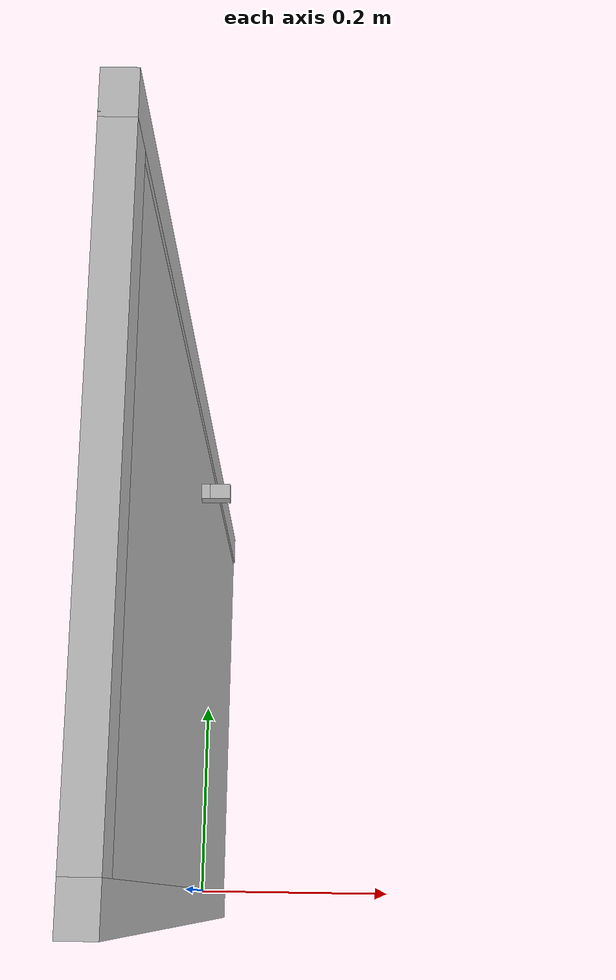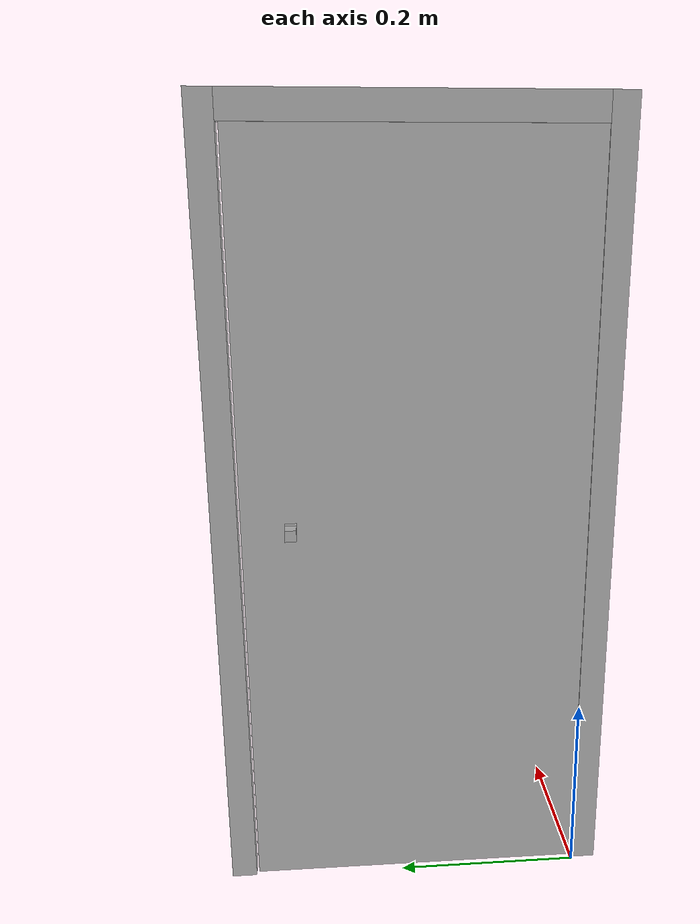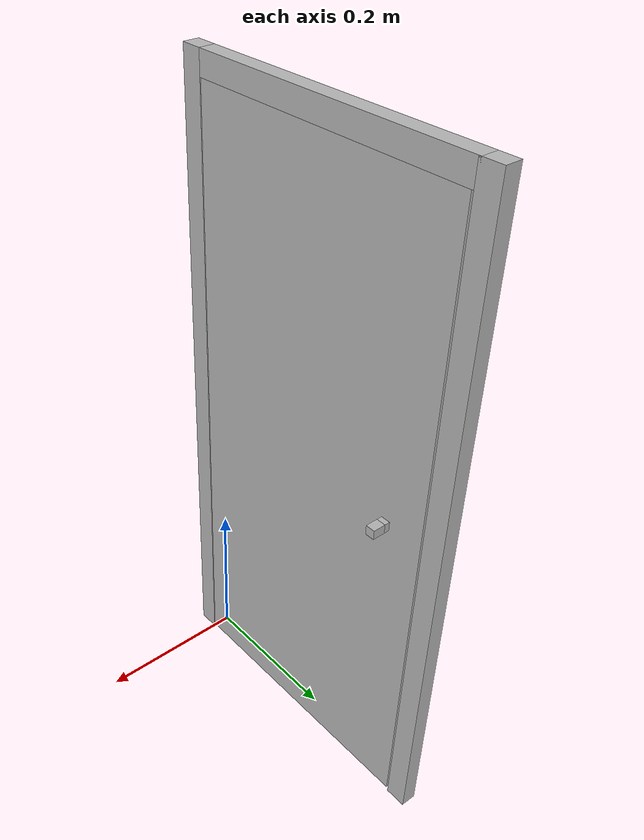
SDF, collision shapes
<?xml version="1.0" ?>
<sdf version="1.5">
  <model name="hinged_door">
    <static>false</static>
    <link name="frame">
      <pose>0.024 -0.0002 0 0 0 0</pose>
      <collision name="collision_1">
        <pose>-0.010058 -0.013716 0.42164 0 0 0</pose>
        <geometry>
          <box>
            <size>0.020116 0.027432 0.84328</size>
          </box>
        </geometry>
      </collision>
      <collision name="collision_2">
        <pose>-0.010058 0.382524 0.42164 0 0 0</pose>
        <geometry>
          <box>
            <size>0.020116 0.027432 0.84328</size>
          </box>
        </geometry>
      </collision>
      <collision name="collision_3">
        <pose>-0.010058 0.185928 0.828548 0 0 0</pose>
        <geometry>
          <box>
            <size>0.020116 0.371856 0.029464</size>
          </box>
        </geometry>
      </collision>
      <visual name="visual">
        <pose>0 -0.027432 0 0 0 0</pose>
        <geometry>
          <mesh>
            <uri>meshes/frame.dae</uri>
            <scale>0.4 0.4 0.4</scale>
          </mesh>
        </geometry>
      </visual>
    </link>
    <link name="door">
      <pose>0.0 0.000 0.816 3.14159 0 1.57</pose>
      <inertial>
        <mass>2.6448384</mass>
        <pose>0.18276 0.01396 0.4064 0 0 0</pose>
        <inertia>
          <ixx>0.145462</ixx>
          <ixy>4.096e-06</ixy>
          <ixz>0.0000</ixz>
          <iyy>0.176125</iyy>
          <iyz>0.0000</iyz>
          <izz>0.0310251</izz>
        </inertia>
      </inertial>
      <collision name="collision">
        <pose>0.18276 0.01396 0.4064 0 0 0</pose>
        <geometry>
          <box>
            <size>0.36576 0.01778 0.8128</size>
          </box>
        </geometry>
      </collision>
      <visual name="visual">
        <pose>0 -0.027432 0 0 0 0</pose>
        <geometry>
          <mesh>
            <uri>meshes/door.dae</uri>
            <scale>0.4 0.4 0.4</scale>
          </mesh>
        </geometry>
      </visual>
    </link>
    <link name="handles">
      <pose>0.0 0.32 0.42 0 3.14 1.57</pose>
      <collision name="handle1_collision">
        <pose>0.006 -0.006 0 -1.57 0 0</pose>
        <geometry>
          <box>
            <size>0.012 0.012 0.048</size>
          </box>
        </geometry>
      </collision>
      <visual name="handle1_visual">
        <pose>0.006 -0.006 0 -1.57 0 0</pose>
        <geometry>
          <box>
            <size>0.012 0.012 0.048</size>
          </box>
        </geometry>
      </visual>
      <collision name="handle2_collision">
        <pose>0.006 -0.022 0 1.57 0 0</pose>
        <geometry>
          <box>
            <size>0.012 0.012 0.048</size>
          </box>
        </geometry>
      </collision>
      <visual name="handle2_visual">
        <pose>0.006 -0.022 0 1.57 0 0</pose>
        <geometry>
          <box>
            <size>0.012 0.012 0.048</size>
          </box>
        </geometry>
      </visual>
    </link>
    <joint name="handle" type="revolute">
      <parent>door</parent>
      <child>handles</child>
      <pose>0.006 0 0 0 0 0</pose>
      <axis>
        <xyz>1 0 0</xyz>
        <limit>
          <lower>0</lower>
          <upper>1.58</upper>
        </limit>
        <dynamics>
          <damping>1.0</damping>
          <friction>10</friction>
        </dynamics>
        <use_parent_model_frame>true</use_parent_model_frame>
      </axis>
      <physics>
        <ode>
          <cfm_damping>1</cfm_damping>
        </ode>
      </physics>
    </joint>
    <joint name="hinge" type="fixed">
      <parent>frame</parent>
      <child>door</child>
    </joint>

    <joint name="frame_anchor_joint" type="fixed">
      <parent>world</parent>
      <child>frame</child>
    </joint>
  </model>
</sdf>
